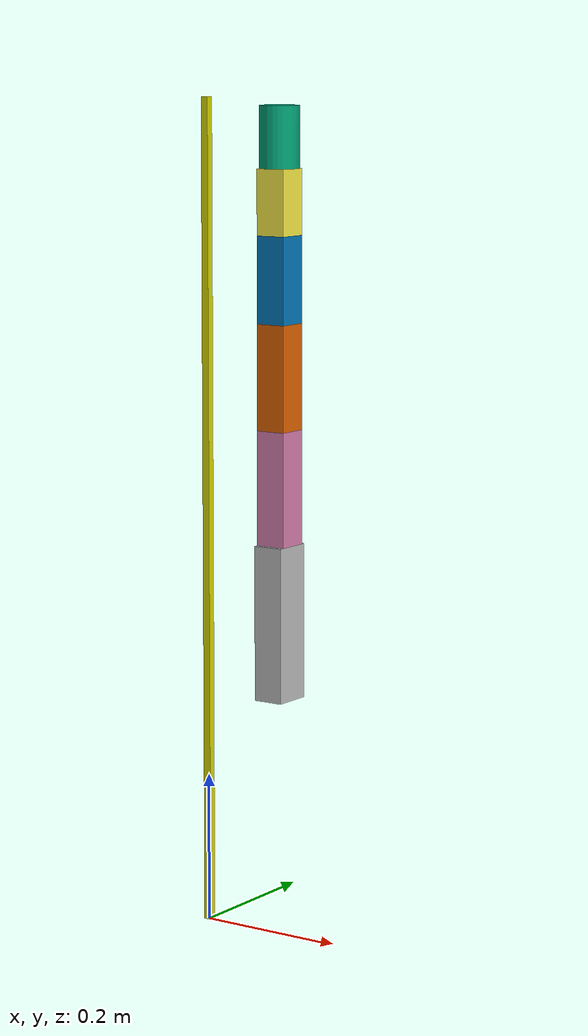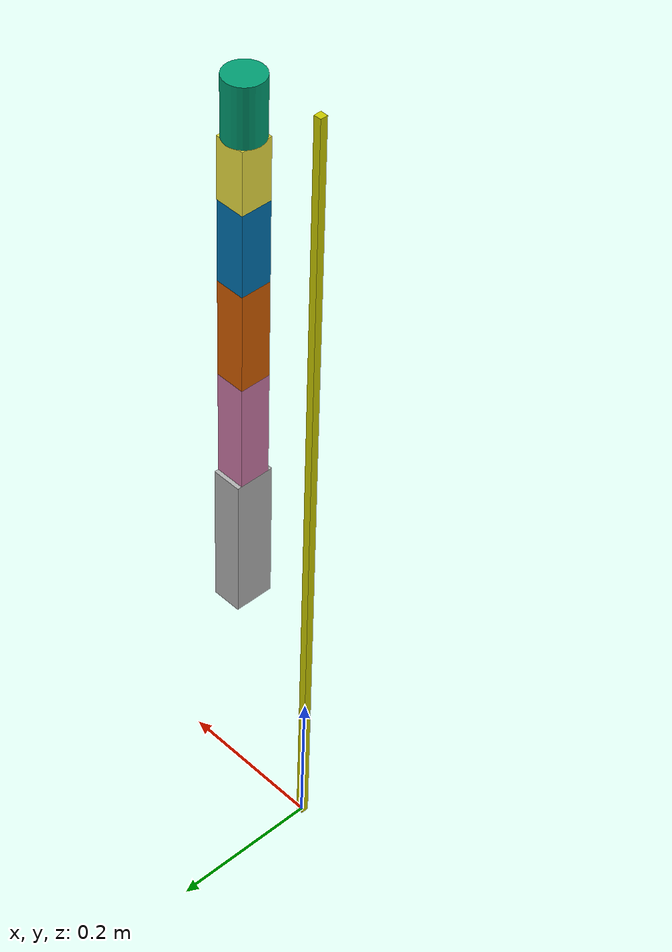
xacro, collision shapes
<?xml version="1.0"?>
<robot name="arm" xmlns:xacro="http://ros.org/wiki/xacro">

<xacro:property name="namespace" value="$(arg namespace)" />

<xacro:include filename="$(find rotors_description)/urdf/component_snippets.xacro" />

<xacro:property name="width" value="42.5e-3" />

<gazebo>
  <plugin name="gazebo_ros_control" filename="libgazebo_ros_control.so">
    <robotNamespace>/arm</robotNamespace>
    <robotSimType>gazebo_ros_control/DefaultRobotHWSim</robotSimType>
  </plugin>
</gazebo>

<xacro:property name="joint_radius" value="24e-3" />
<xacro:property name="PI" value="3.1415926535897931"/>
<xacro:property name="friction" value="1e-5" />
<xacro:property name="damping" value="2e-1" />

<material name="blue">
    <color rgba="0 0 0.8 1"/>
</material>

<material name="green">
    <color rgba="0 0.8 0 1"/>
</material>

<material name="yellow">
    <color rgba="0.8 0.8 0 1"/>
</material>

<material name="black">
    <color rgba="0 0 0 1"/>
</material>

<material name="red">
    <color rgba="0.8 0 0 1"/>
</material>

<link name="world">
	<origin rpy="0 0 0" xyz="0 0 0"/>
</link>

<joint name="fixed_joint" type="fixed">
	<parent link="world"/>
	<child link="fixed_frame"/>
	<origin rpy="0 3.1416 0" xyz="0 0 1.1"/>
</joint>

<link name="fixed_frame">

  	<visual>
		<origin rpy="0 0 0" xyz="0 0 0.55"/>
		<geometry>
		 <box size="0.01 0.01 1.1"/>
  	</geometry>
		<material name = "yellow"/>
	  </visual>

    <collision>
      <origin rpy="0 0 0" xyz="0 0 0.55"/>
      <geometry>
        <box size="0.01 0.01 1.1"/>
      </geometry>
    </collision>

    <inertial>
      <origin rpy="0 0 0" xyz="0 0 0.55"/>
      <mass value="12"/>
      <inertia
        ixx="1.2101" ixy="0.0" ixz="0.0"
        iyy="1.2101" iyz="0.0"
        izz="0.0001"/>
    </inertial>

</link>

<joint name="fixed_joint_right" type="fixed">
	<parent link="fixed_frame"/>
	<child link="base_link_right"/>
	<origin rpy="0 0 0" xyz="-0.11475 0 0.009"/>
</joint>

<link name="base_link_right">
	<visual>
		<origin rpy="0 0 0" xyz="0 0 0"/>
		<geometry>
		<mesh filename="package://rotors_description/meshes/arm/base_link.stl" scale="0.001 0.001 0.001"/>
		</geometry>
	</visual>

    <collision>
      <origin xyz="0 0 39.875e-3" rpy="0 0 0"/>
      <geometry>
        <cylinder radius="26.05e-3" length="79.75e-3"/>
      </geometry>
    </collision>

    <inertial>
      <origin xyz="-2.2068363e-3 -9.1832072e-6 3.1955704e-3" rpy="-0.1729 0 1.5708"/>
      <mass value="0.396"/>
      <inertia
        ixx="3.1455842e-4" ixy="0.0" ixz="0.0"
        iyy="8.1358422e-4" iyz="0.0"
        izz="9.0317049e-4"/>
    </inertial>
</link>

 <joint name="Joint_shoulder_right" type="revolute">
 	<axis xyz="0 0 1"/>
 	<limit effort="1000.0" lower="-3.14" upper="+3.14" velocity="1"/>
	<parent link="base_link_right"/>
	<child link="Link_shoulder_right"/>
	<origin xyz="0 0 79.75e-3"/>
  <dynamics damping="${damping}" friction="${friction}"/>
</joint>

<link name="Link_shoulder_right">
	<visual>
		<origin rpy="0 0 0" xyz="0 0 0"/>
		<geometry>
		<mesh filename="package://rotors_description/meshes/arm/j0.stl" scale="0.001 0.001 0.001"/>
		</geometry>
	</visual>

    <collision>
      <origin xyz="0 0 42.572e-3" rpy="0 0 0"/>
      <geometry>
        <box size="41e-3 42.5e-3 85.144e-3"/>
      </geometry>
    </collision>

    <inertial>
      <origin xyz="-3.0707866e-6 9.0724801e-5 3.3368422e-3" rpy="1.5790 -0.0021 1.7506"/>
      <mass value="1.586"/>
      <inertia
        ixx="9.7058009e-4" ixy="0.0" ixz="0.0"
        iyy="5.8598889e-3" iyz="0.0"
        izz="6.2755829e-3"/>
    </inertial>
</link>

<joint name="Joint_1_right" type="revolute">
	<axis xyz="1 0 0"/>
 	<limit effort="1000.0" lower="0" upper="1.571" velocity="1"/>
	<parent link="Link_shoulder_right"/>
	<child link="Link_one_right"/>
	<origin xyz="0 0 85.144e-3"/>
  <dynamics damping="${damping}" friction="${friction}"/>
</joint>

<link name="Link_one_right">
	<visual>
		<origin rpy="0 0 0" xyz="0 0 24e-3"/>
		<geometry>
		<mesh filename="package://rotors_description/meshes/arm/j1.stl" scale="0.001 0.001 0.001"/>
		</geometry>
	</visual>

    <collision>
      <origin xyz="0 0 56.5e-3" rpy="0 0 0"/>
      <geometry>
        <box size="41e-3 42.5e-3 113e-3"/>
      </geometry>
    </collision>

    <inertial>
      <origin xyz="3.9623762e-4 5.2904518e-4 5.6046387e-2" rpy="-0.0193 -1.4555 -1.4511"/>
      <mass value="0.139"/>
      <inertia
        ixx="5.7544276e-5" ixy="0.0" ixz="0.0"
        iyy="1.7117076e-4" iyz="0.0"
        izz="1.7370141e-4"/>
    </inertial>
</link>

<joint name="Joint_2_right" type="revolute">
	<axis xyz="1 0 0"/>
 	<limit effort="1000.0" lower="-1.571" upper="0" velocity="1"/>
	<parent link="Link_one_right"/>
	<child link="Link_two_right"/>
	<origin xyz="0 0 0.113"/>
  <dynamics damping="${damping}" friction="${friction}"/>
</joint>

<link name="Link_two_right">
	<visual>
		<origin rpy="0 0 0" xyz="0 0 24e-3"/>
		<geometry>
		<mesh filename="package://rotors_description/meshes/arm/j2.stl" scale="0.001 0.001 0.001"/>
		</geometry>
	</visual>

    <collision>
      <origin xyz="0 0 69e-3" rpy="0 0 0"/>
      <geometry>
        <box size="41e-3 42.5e-3 138e-3"/>
      </geometry>
    </collision>

    <inertial>
      <origin xyz="5.1358654e-4 1.4848633e-3 6.4707125e-2" rpy="3.0686 -1.5089 1.6549"/>
      <mass value="0.154"/>
      <inertia
        ixx="9.2363919e-5" ixy="0.0" ixz="0.0"
        iyy="2.7365867e-4" iyz="0.0"
        izz="2.7990892e-4"/>
    </inertial>
</link>

<joint name="Joint_3_right" type="revolute">
	<axis xyz="1 0 0"/>
 	<limit effort="1000.0" lower="0" upper="1.571" velocity="1"/>
	<parent link="Link_two_right"/>
	<child link="Link_three_right"/>
	<origin xyz="0 0 0.138"/>
  <dynamics damping="${damping}" friction="${friction}"/>
</joint>

<link name="Link_three_right">
	<visual>
		<origin rpy="0 0 0" xyz="0 0 24e-3"/>
		<geometry>
		<mesh filename="package://rotors_description/meshes/arm/j3.stl" scale="0.001 0.001 0.001"/>
		</geometry>
	</visual>

    <collision>
      <origin xyz="0 0 75.1e-3" rpy="0 0 0"/>
      <geometry>
        <box size="41e-3 42.5e-3 150.2e-3"/>
      </geometry>
    </collision>

    <inertial>
      <origin xyz="1.0689991e-4 4.5539723e-3 8.0348105e-2" rpy="0.0503 -1.4936 -1.6299"/>
      <mass value="0.207"/>
      <inertia
        ixx="8.4188171e-5" ixy="0.0" ixz="0.0"
        iyy="3.4408597e-4" iyz="0.0"
        izz="3.6490830e-4"/>
    </inertial>
</link>

<joint name="Joint_wrist_right" type="revolute">
	<axis xyz="0 0 1"/>
 	<limit effort="1000.0" lower="-3.14" upper="3.14" velocity="1"/>
	<parent link="Link_three_right"/>
	<child link="Link_hand_right"/>
	<origin xyz="0 0 0.1502"/>
  <dynamics damping="${damping}" friction="${friction}"/>
</joint>

<link name="Link_hand_right">
	<visual>
		<origin rpy="0 0 0 " xyz="0 0 0"/>
		<geometry>
    <mesh filename="package://rotors_description/meshes/arm/hand_right.stl" scale="0.001 0.001 0.001"/>
    </geometry>
	</visual>

    <collision>
      <origin xyz="0 0 102.556e-3" rpy="0 0 0"/>
      <geometry>
        <box size="41e-3 54e-3 205.122e-3"/>
      </geometry>
    </collision>

    <inertial>
      <origin xyz="-5.1914952e-3 9.4338844e-4 8.4791871e-2" rpy="2.7807 -1.4896 1.8174"/>
      <mass value="0.505"/>
      <inertia
        ixx="3.2734333e-4" ixy="0.0" ixz="0.0"
        iyy="1.1324016e-3" iyz="0.0"
        izz="1.3591446e-3"/>
    </inertial>
</link>

  <transmission name="tran0_right">
    <type>transmission_interface/SimpleTransmission</type>
    <joint name="Joint_shoulder_right">
      <hardwareInterface>hardware_interface/EffortJointInterface</hardwareInterface>
    </joint>
    <actuator name="motor0_right">
      <hardwareInterface>hardware_interface/EffortJointInterface</hardwareInterface>
      <mechanicalReduction>1</mechanicalReduction>
    </actuator>
  </transmission>

  <transmission name="tran1_right">
    <type>transmission_interface/SimpleTransmission</type>
    <joint name="Joint_1_right">
      <hardwareInterface>hardware_interface/EffortJointInterface</hardwareInterface>
    </joint>
    <actuator name="motor1_right">
      <hardwareInterface>hardware_interface/EffortJointInterface</hardwareInterface>
      <mechanicalReduction>1</mechanicalReduction>
    </actuator>
  </transmission>

  <transmission name="tran2_right">
    <type>transmission_interface/SimpleTransmission</type>
    <joint name="Joint_2_right">
      <hardwareInterface>hardware_interface/EffortJointInterface</hardwareInterface>
    </joint>
    <actuator name="motor2_right">
      <hardwareInterface>hardware_interface/EffortJointInterface</hardwareInterface>
      <mechanicalReduction>1</mechanicalReduction>
    </actuator>
  </transmission>

  <transmission name="tran3_right">
    <type>transmission_interface/SimpleTransmission</type>
    <joint name="Joint_3_right">
      <hardwareInterface>hardware_interface/EffortJointInterface</hardwareInterface>
    </joint>
    <actuator name="motor3_right">
      <hardwareInterface>hardware_interface/EffortJointInterface</hardwareInterface>
      <mechanicalReduction>1</mechanicalReduction>
    </actuator>
  </transmission>

    <transmission name="tran4_right">
    <type>transmission_interface/SimpleTransmission</type>
    <joint name="Joint_wrist_right">
      <hardwareInterface>hardware_interface/EffortJointInterface</hardwareInterface>
    </joint>
    <actuator name="motor4_right">
      <hardwareInterface>hardware_interface/EffortJointInterface</hardwareInterface>
      <mechanicalReduction>1</mechanicalReduction>
    </actuator>
  </transmission>

</robot>
